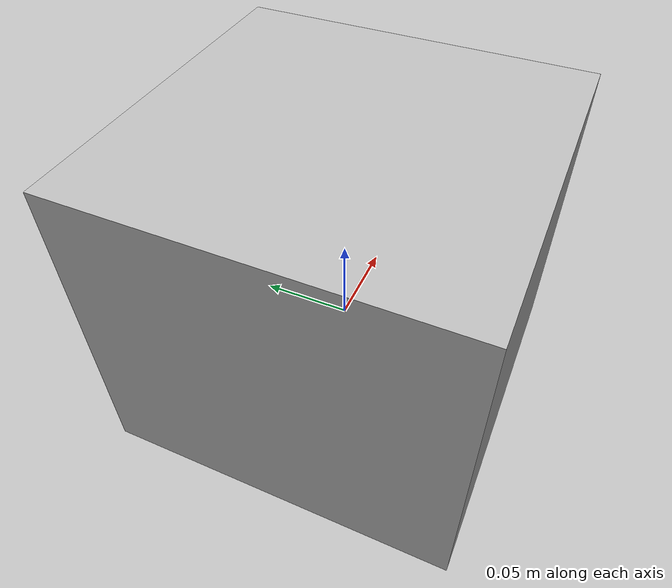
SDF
<?xml version='1.0'?>
<sdf version='1.6'>
  <model name='box_blue'>
		<static>0</static>
    <link name='link'>
      <pose frame=''>0 0 0.0 0 -0 0</pose>
     <inertial>
       <mass>1.0</mass>
       <inertia>
         <ixx>0.1</ixx>
	 <ixy>0.0</ixy>
	 <ixz>0.0</ixz>
	 <iyy>0.1</iyy>
	 <iyz>0.0</iyz>
	 <izz>0.1</izz>
       </inertia>
     </inertial>
     <collision name="collision">
     <pose frame=''>0 0 0 0 -0 0</pose>
     <geometry>
     <mesh>
      <uri>model://box_blue/meshes/box_blue.dae</uri>
      <scale>0.5 0.5 0.5</scale>
     </mesh>
    </geometry>
    <surface>
     <bounce />
     <friction>
       <ode>
         <mu>1.0</mu>
         <mu2>1.0</mu2>
       </ode>
     </friction>
     <contact>
       <ode>
         <kp>10000000.0</kp>
         <kd>0.10</kd>
         <min_depth>0.0</min_depth>
         <max_vel>0.0</max_vel>
       </ode>
     </contact>
    </surface>
   </collision>
      <visual name='visual'>
        <geometry>
          	<mesh>
		      	<uri>model://box_blue/meshes/box_blue.dae</uri>
		          <scale>0.5 0.5 0.5</scale>
		      </mesh>
        </geometry>
      </visual>
      <self_collide>0</self_collide>
    <enable_wind>0</enable_wind>
    <kinematic>0</kinematic>
     </link>
  </model>
</sdf>
